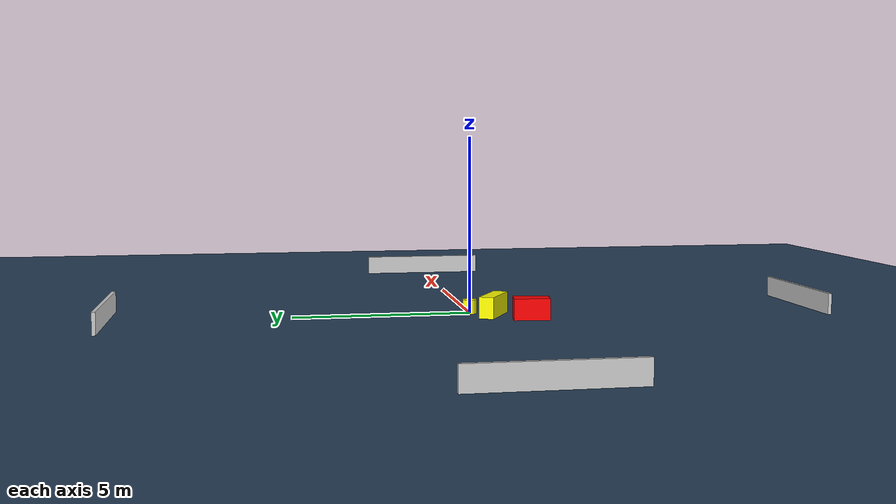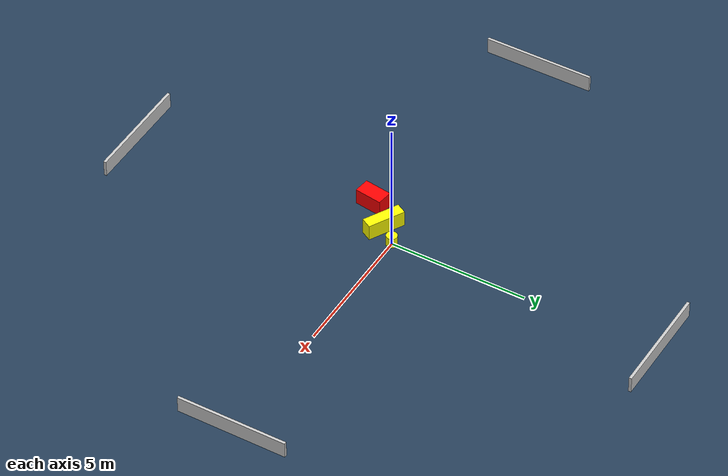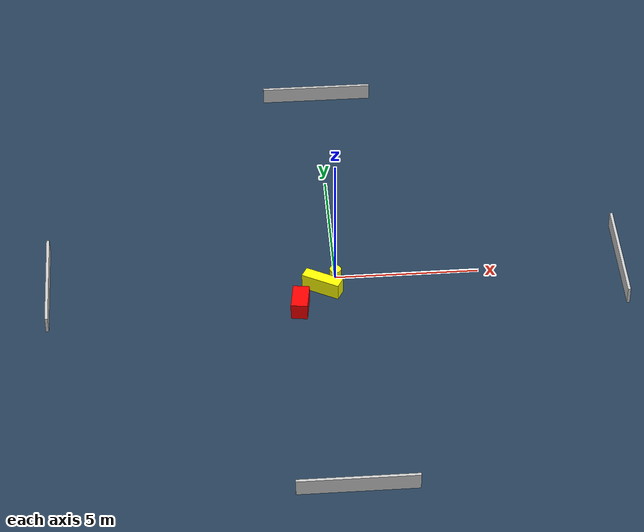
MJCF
<?xml version="1.0" ?>
<mujoco model="generated_environment">
  <option timestep="0.01" integrator="RK4" cone="elliptic"/>
  <default>
    <geom density="1"/>
  </default>
  <asset>
    <texture builtin="gradient" height="3072" name="skybox" rgb1="0.3 0.5 0.7" rgb2="0 0 0" type="skybox" width="512"/>
    <texture builtin="checker" height="300" name="groundplane" rgb1="0.2 0.3 0.4" rgb2="0.1 0.2 0.3" type="2d" width="300"/>
    <material name="groundplane" reflectance="0.2" texrepeat="5 5" texture="groundplane"/>
  </asset>
  <worldbody>
    <light dir="0 0 -1" directional="true" pos="0 0 1.5"/>
    <geom condim="3" friction="0.5 0.005 0.001" material="groundplane" name="floor" pos="0 0 0" size="0 0 0.05" type="plane"/>
    <body name="walls">
      <geom name="wall_1" condim="4" pos="-10.0 0.0 0.3" rgba="0.800000011920929 0.800000011920929 0.800000011920929 1.0" size="0.05 2.0 0.3" type="box"/>
      <geom name="wall_2" condim="4" pos="10.0 0.0 0.3" rgba="0.800000011920929 0.800000011920929 0.800000011920929 1.0" size="0.05 2.0 0.3" type="box"/>
      <geom name="wall_3" condim="4" pos="0.0 -10.0 0.3" rgba="0.800000011920929 0.800000011920929 0.800000011920929 1.0" size="2.0 0.05 0.3" type="box"/>
      <geom name="wall_4" condim="4" pos="0.0 10.0 0.3" rgba="0.800000011920929 0.800000011920929 0.800000011920929 1.0" size="2.0 0.05 0.3" type="box"/>
    </body>
    <body name="robot">
      <joint name="joint_x" type="slide" pos="0 0 0" axis="1 0 0"/>
      <joint name="joint_y" type="slide" pos="0 0 0" axis="0 1 0"/>
      <geom name="robot" type="cylinder" pos="0.0 0.0 0.2" size="0.2 0.2 0.0" mass="5.0" friction="1.0 0.005 0.0001" condim="4" rgba="1.0 1.0 0.0 1.0"/>
    </body>
    <body name="obstacle_1_movable">
      <geom name="obstacle_1_movable" condim="4" pos="-0.49822383398763076 -0.6024614752126486 0.3" euler="0 0 61.3422801725049" friction="0.0 0.005 0.001" rgba="1.0 1.0 0.0 1.0" size="0.20710706002375337 0.6875268560573449 0.3" type="box" mass="0.1"/>
      <joint type="free"/>
    </body>
    <body name="obstacle_2_static">
      <geom name="obstacle_2_static" condim="4" pos="-1.3206422747725115 -1.4992127407897888 0.3" euler="0 0 172.03658437626677" friction="0.0 0.005 0.001" rgba="1.0 0.0 0.0 1.0" size="0.2856899636137062 0.49988688637720397 0.3" type="box"/>
    </body>
  </worldbody>
  <actuator>
    <motor name="actuator_x" joint="joint_x" gear="1" ctrlrange="-1 1"/>
    <motor name="actuator_y" joint="joint_y" gear="1" ctrlrange="-1 1"/>
  </actuator>
</mujoco>
